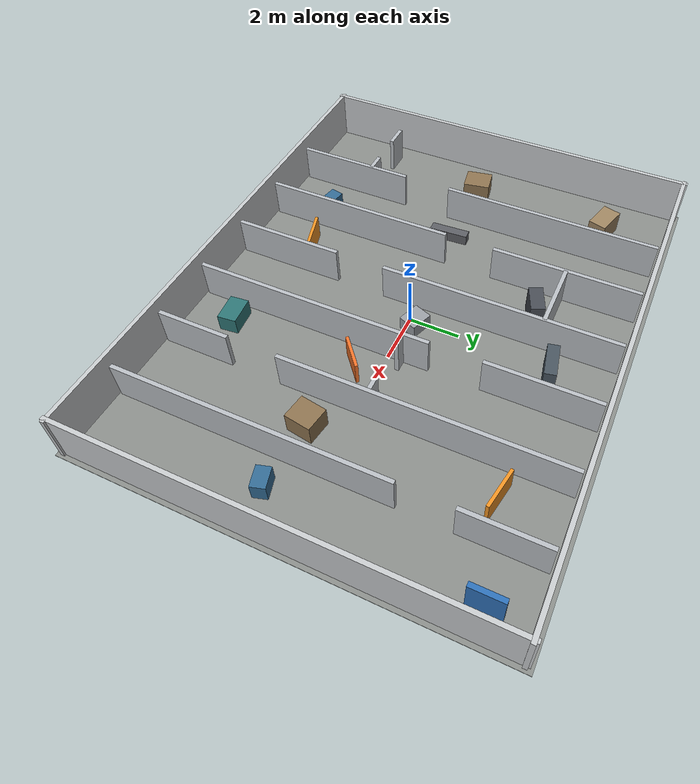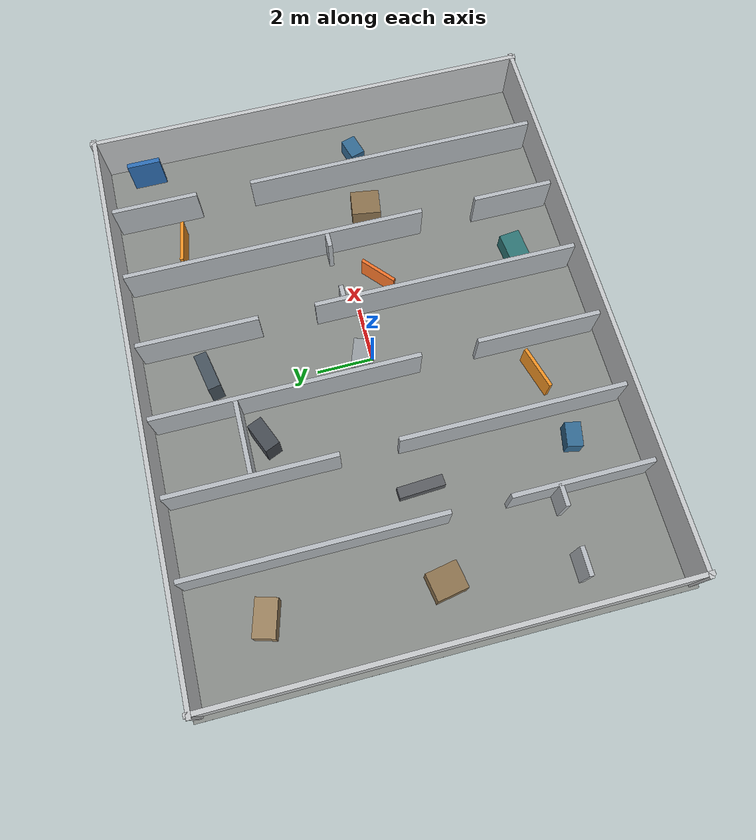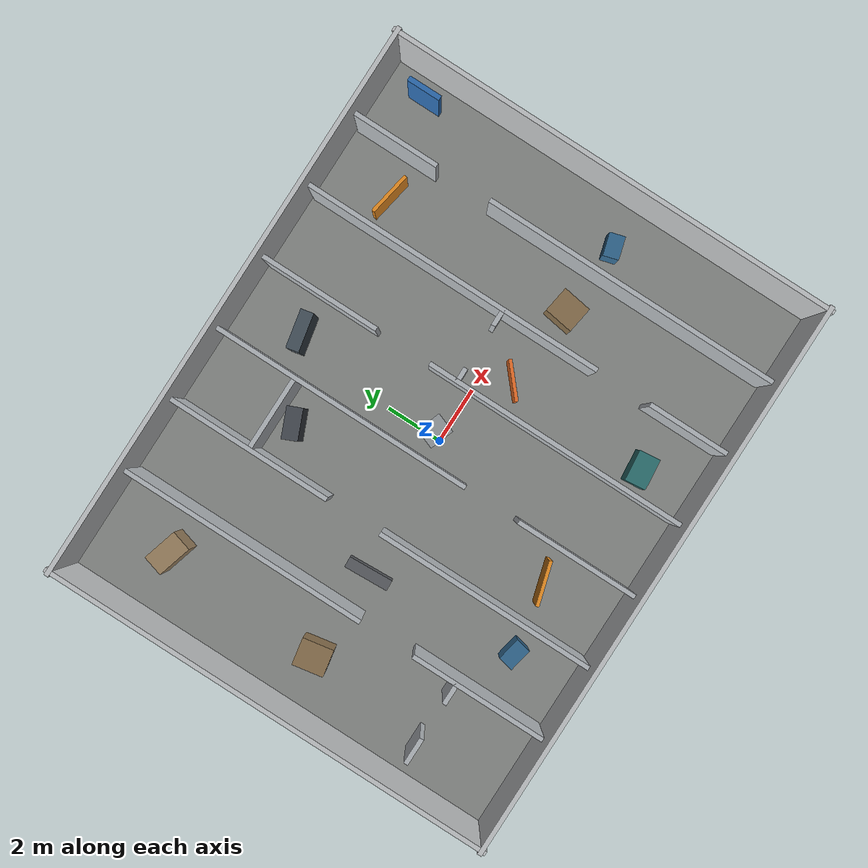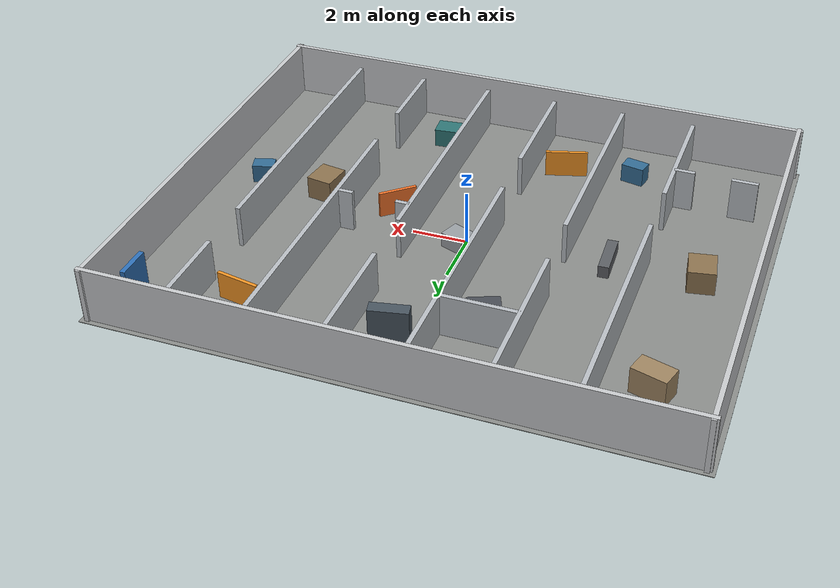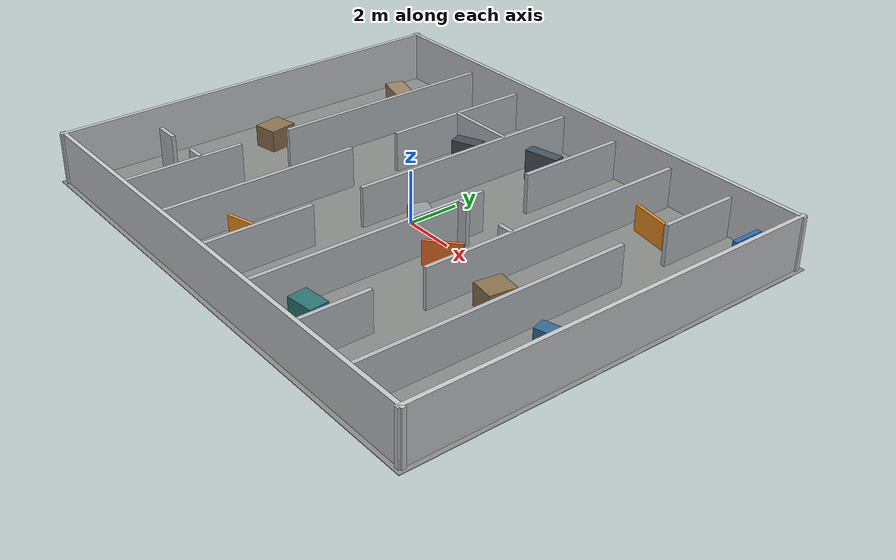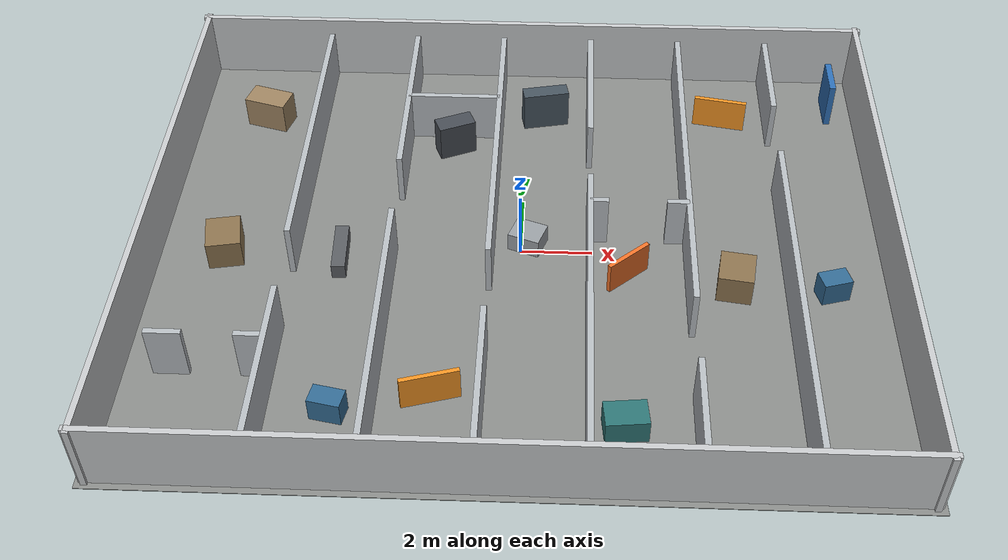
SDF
<?xml version="1.0" ?>
<sdf version="1.6">
  <world name="complex_construction_site">
    <gravity>0 0 -9.8</gravity>
    <scene>
      <ambient>0.50 0.50 0.50 1</ambient>
      <background>0.90 0.92 0.94 1</background>
      <shadows>true</shadows>
    </scene>
    <light name="site_sun" type="directional">
      <cast_shadows>true</cast_shadows>
      <pose>0 0 10 0 0 0</pose>
      <diffuse>0.85 0.85 0.82 1</diffuse>
      <specular>0.18 0.18 0.18 1</specular>
      <direction>-0.35 0.20 -1</direction>
    </light>
    <physics type="ode">
      <real_time_update_rate>1000</real_time_update_rate>
      <max_step_size>0.001</max_step_size>
      <real_time_factor>1.0</real_time_factor>
      <ode>
        <solver><type>quick</type><iters>80</iters></solver>
        <constraints><cfm>0.0</cfm><erp>0.2</erp></constraints>
      </ode>
    </physics>
    <model name="floor">
      <static>true</static>
      <pose>0 0 -0.01 0 0 0</pose>
      <link name="link">
        <collision name="collision">
          <geometry><box><size>20.600 16.600 0.02</size></box></geometry>
        </collision>
        <visual name="visual">
          <geometry><box><size>20.600 16.600 0.02</size></box></geometry>
          <material>
            <ambient>0.54 0.55 0.54 1</ambient>
            <diffuse>0.54 0.55 0.54 1</diffuse>
          </material>
        </visual>
      </link>
    </model>
    <model name="north_wall">
      <static>true</static>
      <pose>0.0000 8.0500 1.0000 0 0 0.000000</pose>
      <link name="link">
        <collision name="collision">
          <geometry><box><size>20.4000 0.1600 2.0000</size></box></geometry>
        </collision>
        <visual name="visual">
          <geometry><box><size>20.4000 0.1600 2.0000</size></box></geometry>
          <material>
            <ambient>0.780 0.790 0.800 1</ambient>
            <diffuse>0.780 0.790 0.800 1</diffuse>
          </material>
        </visual>
      </link>
    </model>
    <model name="south_wall">
      <static>true</static>
      <pose>0.0000 -8.0500 1.0000 0 0 0.000000</pose>
      <link name="link">
        <collision name="collision">
          <geometry><box><size>20.4000 0.1600 2.0000</size></box></geometry>
        </collision>
        <visual name="visual">
          <geometry><box><size>20.4000 0.1600 2.0000</size></box></geometry>
          <material>
            <ambient>0.780 0.790 0.800 1</ambient>
            <diffuse>0.780 0.790 0.800 1</diffuse>
          </material>
        </visual>
      </link>
    </model>
    <model name="east_wall">
      <static>true</static>
      <pose>10.0500 0.0000 1.0000 0 0 0.000000</pose>
      <link name="link">
        <collision name="collision">
          <geometry><box><size>0.1600 16.4000 2.0000</size></box></geometry>
        </collision>
        <visual name="visual">
          <geometry><box><size>0.1600 16.4000 2.0000</size></box></geometry>
          <material>
            <ambient>0.780 0.790 0.800 1</ambient>
            <diffuse>0.780 0.790 0.800 1</diffuse>
          </material>
        </visual>
      </link>
    </model>
    <model name="west_wall">
      <static>true</static>
      <pose>-10.0500 0.0000 1.0000 0 0 0.000000</pose>
      <link name="link">
        <collision name="collision">
          <geometry><box><size>0.1600 16.4000 2.0000</size></box></geometry>
        </collision>
        <visual name="visual">
          <geometry><box><size>0.1600 16.4000 2.0000</size></box></geometry>
          <material>
            <ambient>0.780 0.790 0.800 1</ambient>
            <diffuse>0.780 0.790 0.800 1</diffuse>
          </material>
        </visual>
      </link>
    </model>
    <model name="maze_wall_1_south">
      <static>true</static>
      <pose>-6.2000 -5.4500 0.7750 0 0 0.000000</pose>
      <link name="link">
        <collision name="collision">
          <geometry><box><size>0.1600 4.9000 1.5500</size></box></geometry>
        </collision>
        <visual name="visual">
          <geometry><box><size>0.1600 4.9000 1.5500</size></box></geometry>
          <material>
            <ambient>0.720 0.740 0.760 1</ambient>
            <diffuse>0.720 0.740 0.760 1</diffuse>
          </material>
        </visual>
      </link>
    </model>
    <model name="maze_wall_1_north">
      <static>true</static>
      <pose>-6.2000 3.4500 0.7750 0 0 0.000000</pose>
      <link name="link">
        <collision name="collision">
          <geometry><box><size>0.1600 8.9000 1.5500</size></box></geometry>
        </collision>
        <visual name="visual">
          <geometry><box><size>0.1600 8.9000 1.5500</size></box></geometry>
          <material>
            <ambient>0.720 0.740 0.760 1</ambient>
            <diffuse>0.720 0.740 0.760 1</diffuse>
          </material>
        </visual>
      </link>
    </model>
    <model name="maze_wall_2_south">
      <static>true</static>
      <pose>-3.5000 -3.9500 0.7750 0 0 0.000000</pose>
      <link name="link">
        <collision name="collision">
          <geometry><box><size>0.1600 7.9000 1.5500</size></box></geometry>
        </collision>
        <visual name="visual">
          <geometry><box><size>0.1600 7.9000 1.5500</size></box></geometry>
          <material>
            <ambient>0.720 0.740 0.760 1</ambient>
            <diffuse>0.720 0.740 0.760 1</diffuse>
          </material>
        </visual>
      </link>
    </model>
    <model name="maze_wall_2_north">
      <static>true</static>
      <pose>-3.5000 4.9500 0.7750 0 0 0.000000</pose>
      <link name="link">
        <collision name="collision">
          <geometry><box><size>0.1600 5.9000 1.5500</size></box></geometry>
        </collision>
        <visual name="visual">
          <geometry><box><size>0.1600 5.9000 1.5500</size></box></geometry>
          <material>
            <ambient>0.720 0.740 0.760 1</ambient>
            <diffuse>0.720 0.740 0.760 1</diffuse>
          </material>
        </visual>
      </link>
    </model>
    <model name="maze_wall_3_south">
      <static>true</static>
      <pose>-0.8000 -5.7000 0.7750 0 0 0.000000</pose>
      <link name="link">
        <collision name="collision">
          <geometry><box><size>0.1600 4.4000 1.5500</size></box></geometry>
        </collision>
        <visual name="visual">
          <geometry><box><size>0.1600 4.4000 1.5500</size></box></geometry>
          <material>
            <ambient>0.720 0.740 0.760 1</ambient>
            <diffuse>0.720 0.740 0.760 1</diffuse>
          </material>
        </visual>
      </link>
    </model>
    <model name="maze_wall_3_north">
      <static>true</static>
      <pose>-0.8000 3.2000 0.7750 0 0 0.000000</pose>
      <link name="link">
        <collision name="collision">
          <geometry><box><size>0.1600 9.4000 1.5500</size></box></geometry>
        </collision>
        <visual name="visual">
          <geometry><box><size>0.1600 9.4000 1.5500</size></box></geometry>
          <material>
            <ambient>0.720 0.740 0.760 1</ambient>
            <diffuse>0.720 0.740 0.760 1</diffuse>
          </material>
        </visual>
      </link>
    </model>
    <model name="maze_wall_4_south">
      <static>true</static>
      <pose>1.9000 -3.1500 0.7750 0 0 0.000000</pose>
      <link name="link">
        <collision name="collision">
          <geometry><box><size>0.1600 9.5000 1.5500</size></box></geometry>
        </collision>
        <visual name="visual">
          <geometry><box><size>0.1600 9.5000 1.5500</size></box></geometry>
          <material>
            <ambient>0.720 0.740 0.760 1</ambient>
            <diffuse>0.720 0.740 0.760 1</diffuse>
          </material>
        </visual>
      </link>
    </model>
    <model name="maze_wall_4_north">
      <static>true</static>
      <pose>1.9000 5.7500 0.7750 0 0 0.000000</pose>
      <link name="link">
        <collision name="collision">
          <geometry><box><size>0.1600 4.3000 1.5500</size></box></geometry>
        </collision>
        <visual name="visual">
          <geometry><box><size>0.1600 4.3000 1.5500</size></box></geometry>
          <material>
            <ambient>0.720 0.740 0.760 1</ambient>
            <diffuse>0.720 0.740 0.760 1</diffuse>
          </material>
        </visual>
      </link>
    </model>
    <model name="maze_wall_5_south">
      <static>true</static>
      <pose>4.6000 -6.4500 0.7750 0 0 0.000000</pose>
      <link name="link">
        <collision name="collision">
          <geometry><box><size>0.1600 2.9000 1.5500</size></box></geometry>
        </collision>
        <visual name="visual">
          <geometry><box><size>0.1600 2.9000 1.5500</size></box></geometry>
          <material>
            <ambient>0.720 0.740 0.760 1</ambient>
            <diffuse>0.720 0.740 0.760 1</diffuse>
          </material>
        </visual>
      </link>
    </model>
    <model name="maze_wall_5_north">
      <static>true</static>
      <pose>4.6000 2.4500 0.7750 0 0 0.000000</pose>
      <link name="link">
        <collision name="collision">
          <geometry><box><size>0.1600 10.9000 1.5500</size></box></geometry>
        </collision>
        <visual name="visual">
          <geometry><box><size>0.1600 10.9000 1.5500</size></box></geometry>
          <material>
            <ambient>0.720 0.740 0.760 1</ambient>
            <diffuse>0.720 0.740 0.760 1</diffuse>
          </material>
        </visual>
      </link>
    </model>
    <model name="maze_wall_6_south">
      <static>true</static>
      <pose>7.3000 -2.5500 0.7750 0 0 0.000000</pose>
      <link name="link">
        <collision name="collision">
          <geometry><box><size>0.1600 10.7000 1.5500</size></box></geometry>
        </collision>
        <visual name="visual">
          <geometry><box><size>0.1600 10.7000 1.5500</size></box></geometry>
          <material>
            <ambient>0.720 0.740 0.760 1</ambient>
            <diffuse>0.720 0.740 0.760 1</diffuse>
          </material>
        </visual>
      </link>
    </model>
    <model name="maze_wall_6_north">
      <static>true</static>
      <pose>7.3000 6.3500 0.7750 0 0 0.000000</pose>
      <link name="link">
        <collision name="collision">
          <geometry><box><size>0.1600 3.1000 1.5500</size></box></geometry>
        </collision>
        <visual name="visual">
          <geometry><box><size>0.1600 3.1000 1.5500</size></box></geometry>
          <material>
            <ambient>0.720 0.740 0.760 1</ambient>
            <diffuse>0.720 0.740 0.760 1</diffuse>
          </material>
        </visual>
      </link>
    </model>
    <model name="service_bay_partition_west_a">
      <static>true</static>
      <pose>-8.7250 -4.6500 0.7750 0 0 0.000000</pose>
      <link name="link">
        <collision name="collision">
          <geometry><box><size>0.9500 0.1600 1.5500</size></box></geometry>
        </collision>
        <visual name="visual">
          <geometry><box><size>0.9500 0.1600 1.5500</size></box></geometry>
          <material>
            <ambient>0.720 0.740 0.760 1</ambient>
            <diffuse>0.720 0.740 0.760 1</diffuse>
          </material>
        </visual>
      </link>
    </model>
    <model name="service_bay_partition_west_b">
      <static>true</static>
      <pose>-6.5750 -4.6500 0.7750 0 0 0.000000</pose>
      <link name="link">
        <collision name="collision">
          <geometry><box><size>0.7500 0.1600 1.5500</size></box></geometry>
        </collision>
        <visual name="visual">
          <geometry><box><size>0.7500 0.1600 1.5500</size></box></geometry>
          <material>
            <ambient>0.720 0.740 0.760 1</ambient>
            <diffuse>0.720 0.740 0.760 1</diffuse>
          </material>
        </visual>
      </link>
    </model>
    <model name="service_bay_partition_mid">
      <static>true</static>
      <pose>-2.1500 4.9500 0.7750 0 0 0.000000</pose>
      <link name="link">
        <collision name="collision">
          <geometry><box><size>2.7000 0.1600 1.5500</size></box></geometry>
        </collision>
        <visual name="visual">
          <geometry><box><size>2.7000 0.1600 1.5500</size></box></geometry>
          <material>
            <ambient>0.720 0.740 0.760 1</ambient>
            <diffuse>0.720 0.740 0.760 1</diffuse>
          </material>
        </visual>
      </link>
    </model>
    <model name="inspection_partition_east_a">
      <static>true</static>
      <pose>2.1500 0.5500 0.7750 0 0 0.000000</pose>
      <link name="link">
        <collision name="collision">
          <geometry><box><size>0.5000 0.1600 1.5500</size></box></geometry>
        </collision>
        <visual name="visual">
          <geometry><box><size>0.5000 0.1600 1.5500</size></box></geometry>
          <material>
            <ambient>0.720 0.740 0.760 1</ambient>
            <diffuse>0.720 0.740 0.760 1</diffuse>
          </material>
        </visual>
      </link>
    </model>
    <model name="inspection_partition_east_b">
      <static>true</static>
      <pose>4.3000 0.5500 0.7750 0 0 0.000000</pose>
      <link name="link">
        <collision name="collision">
          <geometry><box><size>0.6000 0.1600 1.5500</size></box></geometry>
        </collision>
        <visual name="visual">
          <geometry><box><size>0.6000 0.1600 1.5500</size></box></geometry>
          <material>
            <ambient>0.720 0.740 0.760 1</ambient>
            <diffuse>0.720 0.740 0.760 1</diffuse>
          </material>
        </visual>
      </link>
    </model>
    <model name="material_stack_a">
      <static>true</static>
      <pose>-8.1500 -0.3500 0.4250 0 0 0.180000</pose>
      <link name="link">
        <collision name="collision">
          <geometry><box><size>0.9500 1.1000 0.8500</size></box></geometry>
        </collision>
        <visual name="visual">
          <geometry><box><size>0.9500 1.1000 0.8500</size></box></geometry>
          <material>
            <ambient>0.550 0.450 0.310 1</ambient>
            <diffuse>0.550 0.450 0.310 1</diffuse>
          </material>
        </visual>
      </link>
    </model>
    <model name="material_stack_b">
      <static>true</static>
      <pose>-7.8500 5.4500 0.4750 0 0 -0.280000</pose>
      <link name="link">
        <collision name="collision">
          <geometry><box><size>1.2500 0.7500 0.9500</size></box></geometry>
        </collision>
        <visual name="visual">
          <geometry><box><size>1.2500 0.7500 0.9500</size></box></geometry>
          <material>
            <ambient>0.620 0.520 0.380 1</ambient>
            <diffuse>0.620 0.520 0.380 1</diffuse>
          </material>
        </visual>
      </link>
    </model>
    <model name="tool_chest_west">
      <static>true</static>
      <pose>-4.5500 -5.8500 0.3500 0 0 -0.200000</pose>
      <link name="link">
        <collision name="collision">
          <geometry><box><size>0.8500 0.5500 0.7000</size></box></geometry>
        </collision>
        <visual name="visual">
          <geometry><box><size>0.8500 0.5500 0.7000</size></box></geometry>
          <material>
            <ambient>0.200 0.420 0.580 1</ambient>
            <diffuse>0.200 0.420 0.580 1</diffuse>
          </material>
        </visual>
      </link>
    </model>
    <model name="pipe_bundle_1">
      <static>true</static>
      <pose>-4.9500 -0.4000 0.2250 0 0 0.050000</pose>
      <link name="link">
        <collision name="collision">
          <geometry><box><size>0.3800 1.6000 0.4500</size></box></geometry>
        </collision>
        <visual name="visual">
          <geometry><box><size>0.3800 1.6000 0.4500</size></box></geometry>
          <material>
            <ambient>0.360 0.370 0.390 1</ambient>
            <diffuse>0.360 0.370 0.390 1</diffuse>
          </material>
        </visual>
      </link>
    </model>
    <model name="rebar_cage_1">
      <static>true</static>
      <pose>-2.1000 4.3000 0.5500 0 0 0.400000</pose>
      <link name="link">
        <collision name="collision">
          <geometry><box><size>1.1000 0.5500 1.1000</size></box></geometry>
        </collision>
        <visual name="visual">
          <geometry><box><size>1.1000 0.5500 1.1000</size></box></geometry>
          <material>
            <ambient>0.280 0.300 0.330 1</ambient>
            <diffuse>0.280 0.300 0.330 1</diffuse>
          </material>
        </visual>
      </link>
    </model>
    <model name="temporary_fence_1">
      <static>true</static>
      <pose>-2.0500 -5.3500 0.5000 0 0 0.280000</pose>
      <link name="link">
        <collision name="collision">
          <geometry><box><size>1.5500 0.1200 1.0000</size></box></geometry>
        </collision>
        <visual name="visual">
          <geometry><box><size>1.5500 0.1200 1.0000</size></box></geometry>
          <material>
            <ambient>0.950 0.580 0.140 1</ambient>
            <diffuse>0.950 0.580 0.140 1</diffuse>
          </material>
        </visual>
      </link>
    </model>
    <model name="concrete_pallet_1">
      <static>true</static>
      <pose>0.2000 0.3000 0.2750 0 0 -0.350000</pose>
      <link name="link">
        <collision name="collision">
          <geometry><box><size>0.9000 0.7500 0.5500</size></box></geometry>
        </collision>
        <visual name="visual">
          <geometry><box><size>0.9000 0.7500 0.5500</size></box></geometry>
          <material>
            <ambient>0.600 0.620 0.640 1</ambient>
            <diffuse>0.600 0.620 0.640 1</diffuse>
          </material>
        </visual>
      </link>
    </model>
    <model name="scaffold_base_1">
      <static>true</static>
      <pose>0.5500 5.7000 0.6000 0 0 0.200000</pose>
      <link name="link">
        <collision name="collision">
          <geometry><box><size>1.3500 0.4500 1.2000</size></box></geometry>
        </collision>
        <visual name="visual">
          <geometry><box><size>1.3500 0.4500 1.2000</size></box></geometry>
          <material>
            <ambient>0.280 0.330 0.370 1</ambient>
            <diffuse>0.280 0.330 0.370 1</diffuse>
          </material>
        </visual>
      </link>
    </model>
    <model name="lift_platform">
      <static>true</static>
      <pose>2.8000 -6.1000 0.3500 0 0 0.100000</pose>
      <link name="link">
        <collision name="collision">
          <geometry><box><size>1.1000 0.7500 0.7000</size></box></geometry>
        </collision>
        <visual name="visual">
          <geometry><box><size>1.1000 0.7500 0.7000</size></box></geometry>
          <material>
            <ambient>0.180 0.460 0.460 1</ambient>
            <diffuse>0.180 0.460 0.460 1</diffuse>
          </material>
        </visual>
      </link>
    </model>
    <model name="barrier_diagonal_1">
      <static>true</static>
      <pose>2.9500 -0.9500 0.4750 0 0 0.720000</pose>
      <link name="link">
        <collision name="collision">
          <geometry><box><size>1.4000 0.1200 0.9500</size></box></geometry>
        </collision>
        <visual name="visual">
          <geometry><box><size>1.4000 0.1200 0.9500</size></box></geometry>
          <material>
            <ambient>0.950 0.450 0.160 1</ambient>
            <diffuse>0.950 0.450 0.160 1</diffuse>
          </material>
        </visual>
      </link>
    </model>
    <model name="material_stack_c">
      <static>true</static>
      <pose>5.8500 -1.2000 0.4250 0 0 -0.150000</pose>
      <link name="link">
        <collision name="collision">
          <geometry><box><size>0.9500 1.0500 0.8500</size></box></geometry>
        </collision>
        <visual name="visual">
          <geometry><box><size>0.9500 1.0500 0.8500</size></box></geometry>
          <material>
            <ambient>0.550 0.450 0.310 1</ambient>
            <diffuse>0.550 0.450 0.310 1</diffuse>
          </material>
        </visual>
      </link>
    </model>
    <model name="temporary_fence_2">
      <static>true</static>
      <pose>5.8500 5.7000 0.5000 0 0 -0.180000</pose>
      <link name="link">
        <collision name="collision">
          <geometry><box><size>1.5500 0.1200 1.0000</size></box></geometry>
        </collision>
        <visual name="visual">
          <geometry><box><size>1.5500 0.1200 1.0000</size></box></geometry>
          <material>
            <ambient>0.950 0.580 0.140 1</ambient>
            <diffuse>0.950 0.580 0.140 1</diffuse>
          </material>
        </visual>
      </link>
    </model>
    <model name="tool_chest_east">
      <static>true</static>
      <pose>8.4500 -1.3500 0.3500 0 0 0.280000</pose>
      <link name="link">
        <collision name="collision">
          <geometry><box><size>0.8000 0.5500 0.7000</size></box></geometry>
        </collision>
        <visual name="visual">
          <geometry><box><size>0.8000 0.5500 0.7000</size></box></geometry>
          <material>
            <ambient>0.200 0.420 0.580 1</ambient>
            <diffuse>0.200 0.420 0.580 1</diffuse>
          </material>
        </visual>
      </link>
    </model>
    <model name="finish_feature_panel">
      <static>true</static>
      <pose>9.2000 6.5000 0.7000 0 0 0.000000</pose>
      <link name="link">
        <collision name="collision">
          <geometry><box><size>0.1800 1.2000 1.4000</size></box></geometry>
        </collision>
        <visual name="visual">
          <geometry><box><size>0.1800 1.2000 1.4000</size></box></geometry>
          <material>
            <ambient>0.180 0.440 0.720 1</ambient>
            <diffuse>0.180 0.440 0.720 1</diffuse>
          </material>
        </visual>
      </link>
    </model>

  </world>
</sdf>
